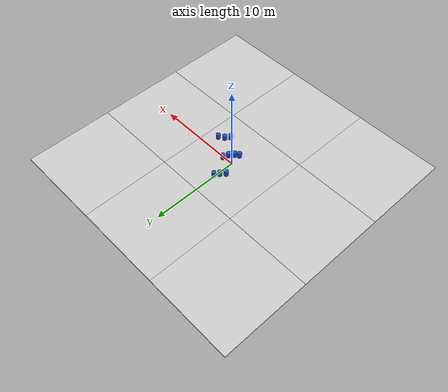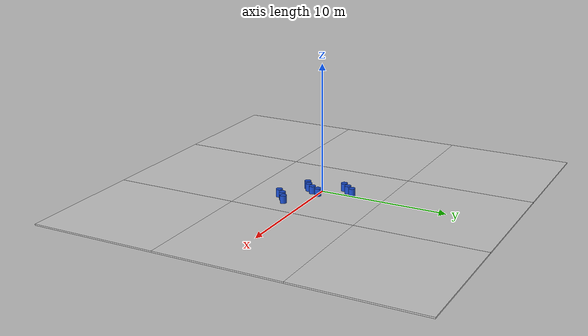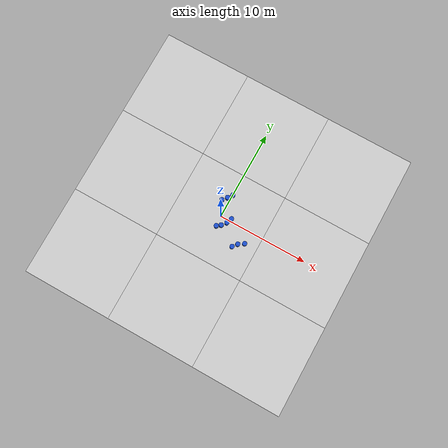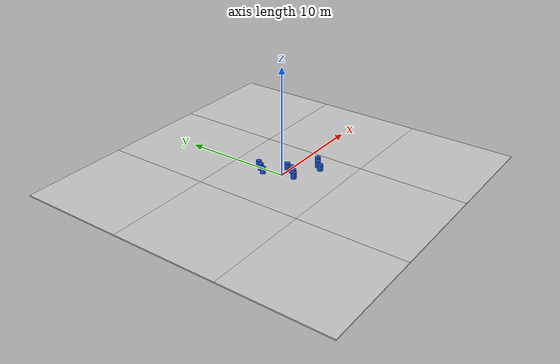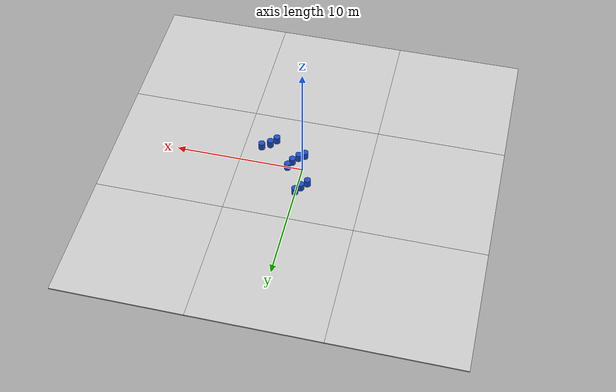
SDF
<?xml version="1.0" ?>
<sdf version="1.9">
  <world name="chicane1">
    <!-- System plugins -->
    <plugin name='ignition::gazebo::systems::Physics'           filename='ignition-gazebo-physics-system'/>
    <plugin name='ignition::gazebo::systems::UserCommands'      filename='ignition-gazebo-user-commands-system'/>
    <plugin name='ignition::gazebo::systems::SceneBroadcaster'  filename='ignition-gazebo-scene-broadcaster-system'/>
    <plugin name="ignition::gazebo::systems::Contact"           filename="libignition-gazebo-contact-system.so"/>
    <plugin name="ignition::gazebo::systems::Sensors"           filename="ignition-gazebo-sensors-system"/>
    <plugin name="ignition::gazebo::systems::Imu"               filename="ignition-gazebo-imu-system"/>
    <plugin name="ignition::gazebo::systems::NavSat"            filename="ignition-gazebo-navsat-system" />

    <physics type="ode">
      <max_step_size>0.001</max_step_size>
      <real_time_update_rate>1000</real_time_update_rate>
    </physics>

    <scene>
      <ambient>0.1 0.1 0.1 0.1</ambient>
      <background>0.8 0.8 0.8 1.0</background>
      <grid>true</grid>
    </scene>

    <light type="directional" name="sun">
      <cast_shadows>true</cast_shadows>
      <pose>0 0 10 0 0 0</pose>
      <diffuse>1 1 1 1</diffuse>
      <specular>0.2 0.2 0.2 1</specular>
      <direction>-0.5 0.1 -0.9</direction>
    </light>

  <!-- Course (centered) and bounding tiles so no cliffs-->
    <include> <uri>model://floor</uri> <pose>0 0 0 0 0 0</pose> </include>
    <include> <uri>model://floor_boundary</uri> <name>n</name> <pose>10 0 0 0 0 0</pose>  </include>
    <include> <uri>model://floor_boundary</uri> <name>s</name> <pose>-10 0 0 0 0 0</pose>  </include>
    <include> <uri>model://floor_boundary</uri> <name>e</name> <pose>0 10 0 0 0 0</pose> </include>
    <include> <uri>model://floor_boundary</uri> <name>w</name> <pose>0 -10 0 0 0 0</pose> </include>
    <include> <uri>model://floor_boundary</uri> <name>ne</name> <pose>10 10 0 0 0 0</pose> </include>
    <include> <uri>model://floor_boundary</uri> <name>nw</name> <pose>10 -10 0 0 0 0</pose> </include>
    <include> <uri>model://floor_boundary</uri> <name>se</name> <pose>-10 10 0 0 0 0</pose> </include>
    <include> <uri>model://floor_boundary</uri> <name>sw</name> <pose>-10 -10 0 0 0 0</pose> </include>

    <gui fullscreen='0'>
      <camera name='user_camera'>
        <pose>-4 -16 4 0 0.3 1.2</pose>
        <view_controller>orbit</view_controller>
      </camera>
    </gui>

    <!-- Obstacles -->
    <include>
      <uri>model://barrel</uri>
      <name>barrel_1</name>
      <pose>-0.72731 1.5 0.1 0 -0 0</pose>
    </include>
    <include>
      <uri>model://barrel</uri>
      <name>barrel_2</name>
      <pose>-0.326132 2 0.1 0 -0 0</pose>
    </include>
    <include>
      <uri>model://barrel</uri>
      <name>barrel_3</name>
      <pose>0.025317 2.5 0.1 0 -0 0</pose>
    </include>
    <include>
      <uri>model://barrel</uri>
      <name>barrel_4</name>
      <pose>0.093756 -1.2 0.1 0 -0 0</pose>
    </include>
    <include>
      <uri>model://barrel</uri>
      <name>barrel_5</name>
      <pose>0.513101 -0.881516 0.1 0 -0 0</pose>
    </include>
    <include>
      <uri>model://barrel</uri>
      <name>barrel_6</name>
      <pose>0.9 -0.375588 0.1 0 -0 0</pose>
    </include>
    <include>
      <uri>model://barrel</uri>
      <name>barrel_7</name>
      <pose>1.14 0.210238 0.1 0 -0 0</pose>
    </include>
    <include>
      <uri>model://barrel</uri>
      <name>barrel_8</name>
      <pose>3.6 -1.4 0.1 0 -0 0</pose>
    </include>
    <include>
      <uri>model://barrel</uri>
      <name>barrel_9</name>
      <pose>3 -1.8 0.1 0 -0 0</pose>
    </include>
    <include>
      <uri>model://barrel</uri>
      <name>barrel_10</name>
      <pose>2.6 -2.3 0.1 0 -0 0</pose>
    </include>

    <!-- Edges of white lines -->
    <include>
      <uri>model://line_boundary</uri>
      <name>line_boundary</name>
      <pose>-4.16455 2.74478 0 0 0 -0.699013</pose>
    </include>
    <include>
      <uri>model://line_boundary</uri>
      <name>line_boundary_0</name>
      <pose>-3.58856 1.9648 0 0 0 -1.17367</pose>
    </include>
    <include>
      <uri>model://line_boundary</uri>
      <name>line_boundary_1</name>
      <pose>-3.37367 1.08043 0 0 -0 1.8401</pose>
    </include>
    <include>
      <uri>model://line_boundary</uri>
      <name>line_boundary_2</name>
      <pose>-3.0322 0.123837 0 0 0 -1.02475</pose>
    </include>
    <include>
      <uri>model://line_boundary</uri>
      <name>line_boundary_3</name>
      <pose>-2.40928 -0.556632 0 0 0 -0.718992</pose>
    </include>
    <include>
      <uri>model://line_boundary</uri>
      <name>line_boundary_4</name>
      <pose>-1.56724 -1.00572 0 0 0 -0.277622</pose>
    </include>
    <include>
      <uri>model://line_boundary</uri>
      <name>line_boundary_5</name>
      <pose>-0.639546 -1.50721 0 0 0 -0.692112</pose>
    </include>
    <include>
      <uri>model://line_boundary</uri>
      <name>line_boundary_6</name>
      <pose>-0.044575 -2.2468 0 0 0 -1.08509</pose>
    </include>
    <include>
      <uri>model://line_boundary</uri>
      <name>line_boundary_7</name>
      <pose>0.318058 -2.92661 0 0 0 -0.996431</pose>
    </include>
    <include>
      <uri>model://line_boundary</uri>
      <name>line_boundary_8</name>
      <pose>0.651158 -3.62968 0 0 0 -0.889633</pose>
    </include>
    <include>
      <uri>model://line_boundary</uri>
      <name>line_boundary_9</name>
      <pose>1.43735 -4.39692 0 0 0 -0.518717</pose>
    </include>
    <include>
      <uri>model://line_boundary</uri>
      <name>line_boundary_10</name>
      <pose>2.33859 -4.83281 0 0 0 -0.415417</pose>
    </include>
    <include>
      <uri>model://line_boundary</uri>
      <name>line_boundary_11</name>
      <pose>-2.12765 4.69579 0 0 0 -0.740098</pose>
    </include>
    <include>
      <uri>model://line_boundary</uri>
      <name>line_boundary_12</name>
      <pose>-1.47274 3.95126 0 0 0 -0.816568</pose>
    </include>
    <include>
      <uri>model://line_boundary</uri>
      <name>line_boundary_13</name>
      <pose>-0.56733 3.3395 0 0 0 -0.417039</pose>
    </include>
    <include>
      <uri>model://line_boundary</uri>
      <name>line_boundary_14</name>
      <pose>0.488677 2.99908 0 0 0 -0.186282</pose>
    </include>
    <include>
      <uri>model://line_boundary</uri>
      <name>line_boundary_15</name>
      <pose>1.53377 2.7292 0 0 0 -0.325198</pose>
    </include>
    <include>
      <uri>model://line_boundary</uri>
      <name>line_boundary_16</name>
      <pose>2.45778 2.29692 0 0 0 -0.659267</pose>
    </include>
    <include>
      <uri>model://line_boundary</uri>
      <name>line_boundary_17</name>
      <pose>3.09875 1.62091 0 0 0 -0.958344</pose>
    </include>
    <include>
      <uri>model://line_boundary</uri>
      <name>line_boundary_18</name>
      <pose>3.54024 0.815193 0 0 0 -1.24416</pose>
    </include>
    <include>
      <uri>model://line_boundary</uri>
      <name>line_boundary_19</name>
      <pose>3.79841 0.004867 0 0 0 -1.31834</pose>
    </include>
    <include>
      <uri>model://line_boundary</uri>
      <name>line_boundary_20</name>
      <pose>4.09701 -0.982722 0 0 0 -1.17365</pose>
    </include>
    <include>
      <uri>model://line_boundary</uri>
      <name>line_boundary_21</name>
      <pose>4.48545 -1.93731 0 0 0 -1.05478</pose>
    </include>

  </world>
</sdf>

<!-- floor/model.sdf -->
<sdf version="1.9">
  <model name="floor">
    <static>true</static>
    <link name="course_floor">
      <collision name="floor_collision">
        <geometry>
          <box>
            <size>10 10 0.1</size>
          </box>
        </geometry>
      </collision>

      <visual name="visual">
        <geometry>
          <box>
            <size>10 10 0.1</size>
          </box>
        </geometry>

        <material>
          <ambient>0.1 0.1 0.1 1</ambient>
          <diffuse>0.8 0.8 0.8 1</diffuse>
          <specular>0.1 0.1 0.1 1</specular>

          <pbr>
            <metal>
              <albedo_map>materials/textures/floor_picture.png</albedo_map>
              <roughness>0.9</roughness>
              <metalness>0.0</metalness>
            </metal>
          </pbr>
        </material>

      </visual>
    </link>
  </model>
</sdf>

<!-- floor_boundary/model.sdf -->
<sdf version="1.9">
  <model name="floor_boundary">
    <static>true</static>
    <link name="course_floor">
      <collision name="floor_collision">
        <geometry>
          <box>
            <size>10 10 0.095</size>
          </box>
        </geometry>
      </collision>

      <visual name="visual">
        <geometry>
          <box>
            <size>10 10 0.1</size>
          </box>
        </geometry>

        <material>
          <ambient>0.1 0.1 0.1 1</ambient>
          <diffuse>0.8 0.8 0.8 1</diffuse>
          <specular>0.1 0.1 0.1 1</specular>

          <pbr>
            <metal>
              <albedo_map>materials/textures/blank_floor.png</albedo_map>
              <roughness>0.9</roughness>
              <metalness>0.0</metalness>
            </metal>
          </pbr>
        </material>

      </visual>
    </link>
  </model>
</sdf>

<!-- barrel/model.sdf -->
<sdf version="1.8">
  <model name="barrel">
    <static>true</static>
    <link name="link">
      <collision name="collision">
        <geometry>
          <cylinder>
            <radius>0.25</radius>
            <length>0.6</length>
          </cylinder>
        </geometry>
        <pose>0 0 0.3 0 0 0</pose>
      </collision>
      <visual name="visual">
        <geometry>
          <cylinder>
            <radius>0.25</radius>
            <length>0.6</length>
          </cylinder>
        </geometry>
        <pose>0 0 0.3 0 0 0</pose>
        <material>
          <ambient>0.1 0.3 0.8 1</ambient>
          <diffuse>0.1 0.3 0.8 1</diffuse>
          <specular>0.3 0.3 0.3 1</specular>
        </material>
      </visual>
    </link>
  </model>
</sdf>

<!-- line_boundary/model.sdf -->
<sdf version="1.8">
  <model name="line_boundary">

    <static>true</static>

    <link name="white_line_boundary">
      <collision name="line_collision">
        <pose>0 0 0.05 0 0 0</pose>
        <geometry>
          <box><size>1 0.1 0.1</size></box>
        </geometry>
      </collision>
    </link>

  </model>
</sdf>
